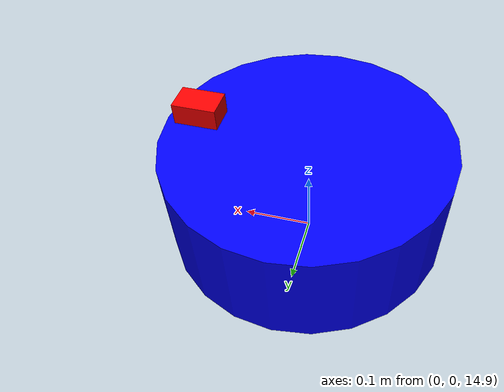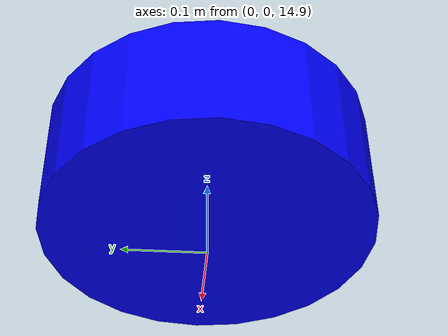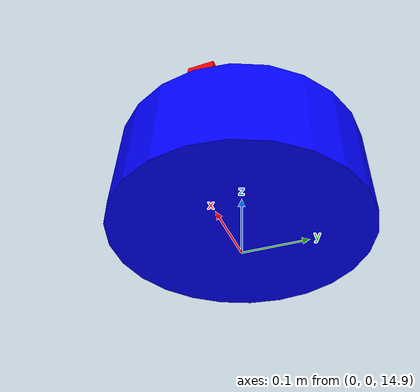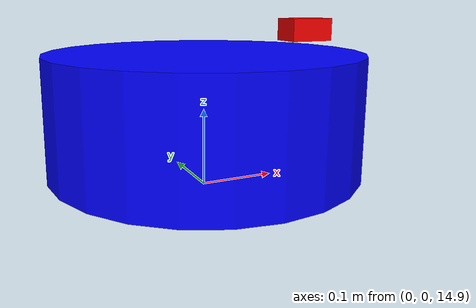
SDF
<?xml version="1.0" ?>
<sdf version="1.6">
  <model name="simple_robot">
    <static>1</static>
    <link name="base_link">
      <kinematic>true</kinematic>
      <pose relative_to="world">0 0 0 0 0 0</pose>

      <inertial>
        <mass>1.0</mass>
        <inertia>
          <ixx>0.005416666666666667</ixx>
          <iyy>0.013541666666666669</iyy>
          <izz>0.018541666666666668</izz>
          <ixy>0.0</ixy>
          <ixz>0.0</ixz>
          <iyz>0.0</iyz>
        </inertia>
      </inertial>

      <visual name="base_visual">
        <geometry>
          <cylinder>
            <radius>0.2</radius>
            <length>0.15</length>
          </cylinder>
        </geometry>
        <material>
          <ambient>0 0 1 1</ambient>
          <diffuse>0 0 1 1</diffuse>
        </material>
      </visual>

      <collision name="base_link_collision">
        <pose>0 0 0 0 0 0</pose>
        <geometry>
          <cylinder>
            <radius>0.2</radius>
            <length>0.15</length>
          </cylinder>
        </geometry>
      </collision>
    </link>

    <link name="camera_link">
      <pose relative_to="base_link">0.15 0.0 0.1 0.0 -0.0 0.0</pose>

      <inertial>
        <mass>1.0</mass>
        <inertia>
          <ixx>0.00020833333333333335</ixx>
          <iyy>0.00037499999999999995</iyy>
          <izz>0.0004333333333333333</izz>
          <ixy>0.0</ixy>
          <ixz>0.0</ixz>
          <iyz>0.0</iyz>
        </inertia>
      </inertial>

      <visual name="camera_visual">
        <geometry>
          <box>
            <size>0.06 0.04 0.03</size>
          </box>
        </geometry>
        <material>
          <ambient>1 0 0 1</ambient>
          <diffuse>1 0 0 1</diffuse>
        </material>
      </visual>

      <collision name="camera_link_collision">
        <pose>0 0 0 0 0 0</pose>
        <geometry>
          <box>
            <size>0.06 0.04 0.03</size>
          </box>
        </geometry>
      </collision>

      <sensor type="camera" name="camera1">
        <pose>0 0 0 0 0 0</pose>
        <always_on>1</always_on>
        <update_rate>30.0</update_rate>
        <camera name="head">
          <horizontal_fov>1.3962634</horizontal_fov>
          <image>
            <width>800</width>
            <height>800</height>
            <format>R8G8B8</format>
          </image>
          <clip>
            <near>0.02</near>
            <far>2</far>
          </clip>
          <noise>
            <type>gaussian</type>
            <mean>0.0</mean>
            <stddev>0.007</stddev>
          </noise>
        </camera>

        <plugin name="camera_controller" filename="libgazebo_ros_camera.so">
          <alwaysOn>true</alwaysOn>
          <updateRate>0.0</updateRate>
          <cameraName>simple_robot/camera1</cameraName>
          <imageTopicName>/simple_robot/camera1/image_raw</imageTopicName>
          <cameraInfoTopicName>/simple_robot/camera1/camera_info</cameraInfoTopicName>
          <frameName>simple_robot/camera1</frameName>
          <hackBaseline>0.07</hackBaseline>
          <distortionK1>0.0</distortionK1>
          <distortionK2>0.0</distortionK2>
          <distortionK3>0.0</distortionK3>
          <distortionT1>0.0</distortionT1>
          <distortionT2>0.0</distortionT2>
        </plugin>
      </sensor>

    </link>

    <joint name="world" type="fixed">
      <parent>world</parent>
      <child>base_link</child>
      <pose>0.0 0.0 0.5 0.0 -0.0 0.0</pose>
    </joint>

    <joint name="camera_joint" type="fixed">
      <parent>base_link</parent>
      <child>camera_link</child>
      <pose>0.0 0.0 0.05 0.0 -0.0 0.0</pose>
    </joint>

  </model>
</sdf>
